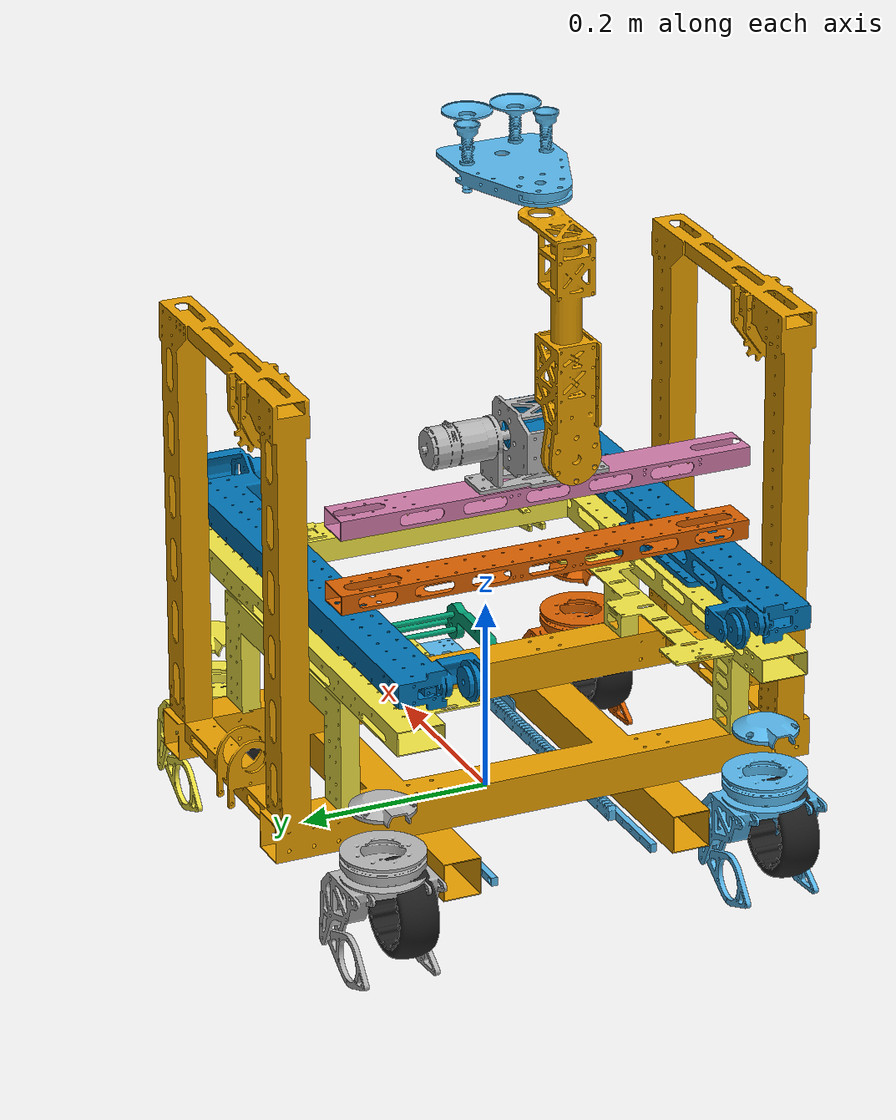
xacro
<?xml version="1.0"?>
<robot xmlns:xacro="http://www.ros.org/wiki/xacro" name="engineer">
    <xacro:arg name="load_chassis" default="true"/>
    <xacro:arg name="load_arm" default="true"/>
    <xacro:arg name="use_simulation" default="true"/>

    <xacro:if value="$(arg load_chassis)">
        <xacro:include filename="$(find rm_description)/urdf/engineer/chassis.urdf.xacro"/>
        <xacro:chassis/>
    </xacro:if>

    <xacro:if value="$(arg load_arm)">
        <xacro:include filename="$(find rm_description)/urdf/engineer/arm.urdf.xacro"/>
        <xacro:arm connected_to="base_link" simulation="$(arg use_simulation)"/>
        <xacro:include filename="$(find rm_description)/urdf/engineer/arm.transmission.xacro"/>
        <xacro:arm_transmission simulation="$(arg use_simulation)"/>
    </xacro:if>

    <xacro:if value="$(arg use_simulation)">
        <gazebo>
            <plugin name="rm_ros_control" filename="librm_robot_hw_sim.so">
                <robotNamespace>/</robotNamespace>
                <robotSimType>rm_gazebo/RmRobotHWSim</robotSimType>
            </plugin>
        </gazebo>
    </xacro:if>

</robot>

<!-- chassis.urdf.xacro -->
<robot xmlns:xacro="http://www.ros.org/wiki/xacro" name="chassis">

    <xacro:include filename="$(find rm_description)/urdf/common/swerve_drive.urdf.xacro"/>
    <!-- https://upload.wikimedia.org/wikipedia/commons/5/52/Wheelbase_and_Track.png -->
    <xacro:property name="wheel_track" value="0.423"/>
    <xacro:property name="wheel_base" value="0.412"/>
    <xacro:property name="wheel_offset_z" value="0.06795"/>

    <xacro:macro name="chassis">

        <link name="base_link">
            <inertial>
                <mass value="14.321805"/>
                <origin xyz="-0.011828 -0.007426 0.160123"/>
                <inertia ixx="1.06e0" ixy="1.071e-3" ixz="3.011e-2" iyy="9.494e-1" iyz="2.344e-2" izz="7.430e-1"/>
            </inertial>
            <visual>
                <origin xyz="0 0 0" rpy="0 0 0"/>
                <geometry>
                    <mesh filename="package://rm_description/meshes/engineer/base_link.stl" scale="0.001 0.001 0.001"/>
                </geometry>
            </visual>
            <collision>
                <origin xyz="0 0 0" rpy="0 0 0"/>
                <geometry>
                    <mesh filename="package://rm_description/meshes/engineer/base_collision.stl"
                          scale="0.001 0.001 0.001"/>
                </geometry>
            </collision>
            <collision>
                <origin xyz="0.175 -0.247 0.275" rpy="0 0 0"/>
                <geometry>
                    <box size="0.061 0.042 0.4"/>
                </geometry>
            </collision>
            <collision>
                <origin xyz="0.175 0.247 0.275" rpy="0 0 0"/>
                <geometry>
                    <box size="0.091 0.05 0.45"/>
                </geometry>
            </collision>
            <collision>
                <origin xyz="-0.175 -0.247 0.275" rpy="0 0 0"/>
                <geometry>
                    <box size="0.091 0.05 0.45"/>
                </geometry>
            </collision>
            <collision>
                <origin xyz="0.175 -0.247 0.275" rpy="0 0 0"/>
                <geometry>
                    <box size="0.091 0.05 0.45"/>
                </geometry>
            </collision>
            <collision>
                <origin xyz="-0.175 0.247 0.275" rpy="0 0 0"/>
                <geometry>
                    <box size="0.091 0.05 0.45"/>
                </geometry>
            </collision>
            <collision>
                <origin xyz="0. -0.255 0.51" rpy="0 0 0"/>
                <geometry>
                    <box size="0.41 0.06 0.09"/>
                </geometry>
            </collision>
            <collision>
                <origin xyz="0. 0.255 0.51" rpy="0 0 0"/>
                <geometry>
                    <box size="0.41 0.06 0.09"/>
                </geometry>
            </collision>
        </link>

        <link name="card">
            <inertial>
                <mass value="0.807434"/>
                <origin xyz="0.038318 -0.188972 -0.009577"/>
                <inertia ixx="3.069e-2" ixy="5.419e-3" ixz="2.460e-4" iyy="4.318e-3" iyz="3.398e-2"
                         izz="4.126e-3"/>
            </inertial>
            <visual>
                <origin xyz="0 0 0" rpy="0 0 -1.57"/>
                <geometry>
                    <mesh filename="package://rm_description/meshes/engineer/card.stl" scale="0.001 0.001 0.001"/>
                </geometry>
            </visual>
        </link>

        <link name="drag">
            <inertial>
                <mass value="0.404605"/>
                <origin xyz="0.053283 0.032371 0.017125"/>
                <inertia ixx="5.893e-3" ixy="1.346e-4" ixz="-8.957569e-5" iyy="2.879e-3" iyz="-4.020e-4"
                         izz="8.206e-3"/>
            </inertial>
            <visual>
                <origin xyz="0 0 0" rpy="0 0 0"/>
                <geometry>
                    <mesh filename="package://rm_description/meshes/engineer/drag.stl"
                          scale="0.001 0.001 0.001"/>
                </geometry>
            </visual>
        </link>

        <joint name="card_joint" type="prismatic">
            <parent link="base_link"/>
            <child link="card"/>
            <origin xyz="0.244 0. 0.036" rpy="0 0 -1.57"/>
            <axis xyz="0 1 0"/>
            <limit lower="-0.01" upper="0.6" velocity="3" effort="200"/>
        </joint>

        <joint name="drag_joint" type="revolute">
            <parent link="base_link"/>
            <child link="drag"/>
            <origin xyz="0.245 0 0.06" rpy="0 0 0"/>
            <axis xyz="0 1 0"/>
            <limit lower="-10" upper="20" velocity="6" effort="200"/>
        </joint>

        <transmission name="trans_card_joint">
            <type>transmission_interface/SimpleTransmission</type>
            <actuator name="card_joint_motor">
                <mechanicalReduction>1800</mechanicalReduction>
            </actuator>
            <joint name="card_joint">
                <offset>0</offset>
                <hardwareInterface>hardware_interface/EffortJointInterface</hardwareInterface>
            </joint>
        </transmission>

        <transmission name="trans_drag_joint">
            <type>transmission_interface/SimpleTransmission</type>
            <actuator name="drag_joint_motor">
                <mechanicalReduction>2</mechanicalReduction>
            </actuator>
            <joint name="drag_joint">
                <offset>0</offset>
                <hardwareInterface>hardware_interface/EffortJointInterface</hardwareInterface>
            </joint>
        </transmission>

        <xacro:swerve_drive prefix="left_front" connected_to="base_link"
                            x_offset="${wheel_track/2}" y_offset="${wheel_base/2}"
                            z_offset="${wheel_offset_z}"/>
        <xacro:swerve_drive prefix="right_front" connected_to="base_link"
                            x_offset="${wheel_track/2}" y_offset="${-wheel_base/2}"
                            z_offset="${wheel_offset_z}"/>
        <xacro:swerve_drive prefix="left_back" connected_to="base_link"
                            x_offset="${-wheel_track/2}" y_offset="${wheel_base/2}"
                            z_offset="${wheel_offset_z}"/>
        <xacro:swerve_drive prefix="right_back" connected_to="base_link"
                            x_offset="${-wheel_track/2}" y_offset="${-wheel_base/2}"
                            z_offset="${wheel_offset_z}"/>

        <xacro:swerve_transmission prefix="left_front" wheel_reduction="13" pivot_offset="4.481304"/>
        <xacro:swerve_transmission prefix="right_front" wheel_reduction="13" pivot_offset="0.733332"/>
        <xacro:swerve_transmission prefix="left_back" wheel_reduction="13" pivot_offset="4.25117"/>
        <xacro:swerve_transmission prefix="right_back" wheel_reduction="13" pivot_offset="0.80697"/>

    </xacro:macro>

</robot>

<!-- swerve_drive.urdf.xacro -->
<robot xmlns:xacro="http://www.ros.org/wiki/xacro">

    <xacro:macro name="swerve_drive"
                 params="prefix x_offset y_offset z_offset  connected_to">

        <link name="${prefix}_pivot">
            <visual>
                <origin xyz="0 0 0" rpy="0 0 0"/>
                <geometry>
                    <mesh filename="package://rm_description/meshes/common/swerve_pivot.stl"
                          scale="0.001 0.001 0.001"/>
                </geometry>
            </visual>
            <inertial>
                <mass value="0.114131"/>
                <origin xyz="-0.00005 0.017079 -0.041536" rpy="0 0 0"/>
                <inertia ixx="1.335e-4" ixy="26.001e-9" ixz="65.031e-9" iyy="1.372e-4" iyz="20051.742e-9"
                         izz="66866.081e-9"/>
            </inertial>
        </link>

        <joint name="${prefix}_pivot_joint" type="revolute">
            <axis xyz="0 0 1"/>
            <origin xyz="${x_offset} ${y_offset} ${z_offset}" rpy="0 0 0"/>
            <parent link="${connected_to}"/>
            <child link="${prefix}_pivot"/>
            <dynamics damping="0.0" friction="0.1"/>
            <limit effort="1.2" velocity="50" lower="-1e10" upper="1e10"/>
        </joint>

        <link name="${prefix}_wheel">
            <visual>
                <origin xyz="0 0 0" rpy="0 0 0"/>
                <geometry>
                    <mesh filename="package://rm_description/meshes/common/swerve_wheel.stl"
                          scale="0.001 0.001 0.001"/>
                </geometry>
            </visual>
            <inertial>
                <mass value="0.267401"/>
                <origin xyz="-0.000004 0.000125 0.000001" rpy="0 0 0"/>
                <inertia ixx="3.585e-4" ixy="0" ixz="13.459e-9" iyy="6.846e-4" iyz="0"
                         izz="3.584e-4"/>
            </inertial>
            <collision>
                <origin xyz="0 0 0" rpy="${pi/2.} 0 0"/>
                <geometry>
                    <cylinder length="0.02" radius="0.055"/>
                </geometry>
            </collision>
        </link>

        <joint name="${prefix}_wheel_joint" type="revolute">
            <axis xyz="0 1 0"/>
            <origin xyz="0 0 -0.06635" rpy="0 0 0"/>
            <parent link="${prefix}_pivot"/>
            <child link="${prefix}_wheel"/>
            <limit effort="3" velocity="76" lower="-1e10" upper="1e10"/>
            <dynamics damping="0.0" friction="0.05"/>
        </joint>

        <gazebo reference="${prefix}_wheel">
            <mu1 value="1.0"/>
            <mu2 value="1.0"/>
            <kp value="1000000.0"/>
            <kd value="100.0"/>
            <material>Gazebo/Black</material>
        </gazebo>
    </xacro:macro>

    <xacro:macro name="swerve_transmission" params="prefix wheel_reduction  pivot_offset">

        <transmission name="${prefix}_pivot_trans">
            <type>transmission_interface/SimpleTransmission</type>
            <actuator name="${prefix}_pivot_motor">
                <mechanicalReduction>-1</mechanicalReduction>
            </actuator>
            <joint name="${prefix}_pivot_joint">
                <offset>${pivot_offset}</offset>
                <hardwareInterface>hardware_interface/EffortJointInterface</hardwareInterface>
            </joint>
        </transmission>

        <transmission name="${prefix}_wheel_trans">
            <type>transmission_interface/SimpleTransmission</type>
            <actuator name="${prefix}_wheel_motor">
                <mechanicalReduction>${wheel_reduction}</mechanicalReduction>
            </actuator>
            <joint name="${prefix}_wheel_joint">
                <hardwareInterface>hardware_interface/EffortJointInterface</hardwareInterface>
            </joint>
        </transmission>
    </xacro:macro>

</robot>

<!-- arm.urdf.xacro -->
<robot xmlns:xacro="http://www.ros.org/wiki/xacro" name="arm">

    <xacro:macro name="arm" params="connected_to simulation">
        <xacro:property name="joint1_upper_limit" value="0.24"/>
        <xacro:property name="joint1_lower_limit" value="0"/>
        <xacro:property name="joint2_upper_limit" value="0.33"/>
        <xacro:property name="joint2_lower_limit" value="-0.35"/>
        <xacro:property name="joint3_upper_limit" value="0.31"/>
        <xacro:property name="joint3_lower_limit" value="-0.12"/>
        <xacro:property name="joint4_upper_limit" value="0.31"/>
        <xacro:property name="joint4_lower_limit" value="-0.31"/>
        <xacro:property name="joint5_upper_limit" value="3.8445"/>
        <xacro:property name="joint5_lower_limit" value="0"/>
        <xacro:property name="joint6_upper_limit" value="0.9"/>
        <xacro:property name="joint6_lower_limit" value="-0.9"/>
        <xacro:property name="joint7_upper_limit" value="4.5"/>
        <xacro:property name="joint7_lower_limit" value="-1.3"/>
        <xacro:property name="joint1_velocity" value="1.2"/>
        <xacro:property name="joint1_effort" value="609.75"/>
        <xacro:property name="joint2_velocity" value="1.9"/>
        <xacro:property name="joint2_effort" value="110.00"/>
        <xacro:property name="joint3_velocity" value="0.964"/>
        <xacro:property name="joint3_effort" value="258.00"/>
        <!--  link  -->
        <link name="link1">
            <inertial>
                <mass value="3.266699"/>
                <origin xyz="0.044552 -0.00278 -0.024231"/>
                <inertia ixx="9.871e-2" ixy="4.488e-4" ixz="4.363e-3" iyy="1.028e-1" iyz="-1.680e-4" izz="1.941e-1"/>
            </inertial>
            <visual>
                <origin xyz="0 0 0" rpy="0 0 0"/>
                <geometry>
                    <mesh filename="package://rm_description/meshes/engineer/link1.stl" scale="0.001 0.001 0.001"/>
                </geometry>
            </visual>
            <collision>
                <origin xyz="0 0 0" rpy="0 0 0"/>
                <geometry>
                    <mesh filename="package://rm_description/meshes/engineer/link1_collision.stl"
                          scale="0.001 0.001 0.001"/>
                </geometry>
            </collision>
            <selfCollide>true</selfCollide>
        </link>

        <link name="link2_1">
            <inertial>
                <mass value="3.952737"/>
                <origin xyz="-0.053803 0.000205 -0.026272"/>
                <inertia ixx="1.397e-1" ixy="3.8918305e-5" ixz="5.212e-3" iyy="1.367e-1" iyz="4.7399093e-5"
                         izz="2.691e-1"/>
            </inertial>
            <visual>
                <origin xyz="0 0 0" rpy="0 0 0"/>
                <geometry>
                    <mesh filename="package://rm_description/meshes/engineer/link2_1.stl" scale="0.001 0.001 0.001"/>
                </geometry>
            </visual>
            <collision>
                <origin xyz="0 0 0" rpy="0 0 0"/>
                <geometry>
                    <mesh filename="package://rm_description/meshes/engineer/link2_1_collision.stl"
                          scale="0.001 0.001 0.001"/>
                </geometry>
            </collision>
            <collision>
                <origin xyz="0.29 0.175 -0.025" rpy="0 0 0"/>
                <geometry>
                    <box size="0.08 0.12 0.1"/>
                </geometry>
            </collision>
            <collision>
                <origin xyz="0.29 -0.175 -0.025" rpy="0 0 0"/>
                <geometry>
                    <box size="0.08 0.12 0.1"/>
                </geometry>
            </collision>
            <selfCollide>true</selfCollide>
        </link>

        <link name="link2_2">
            <inertial>
                <mass value="1.355869"/>
                <origin xyz="-0.016479 0.004436 0.022901"/>
                <inertia ixx="9.431e-3" ixy="4.159e-4" ixz="6.466e-4" iyy="4.159e-4" iyz="-6.0491299e-5"
                         izz="9.448e-3"/>
            </inertial>
            <visual>
                <geometry>
                    <mesh filename="package://rm_description/meshes/engineer/link2_2.stl" scale="0.001 0.001 0.001"/>
                </geometry>
                <origin xyz="0 0 0" rpy="0 0 0"/>
            </visual>
            <collision>
                <origin xyz="0 0 0" rpy="0 0 0"/>
                <geometry>
                    <mesh filename="package://rm_description/meshes/engineer/link2_2_collision.stl"
                          scale="0.001 0.001 0.001"/>
                </geometry>
            </collision>
            <collision>
                <origin xyz="-0.056 0.24 0.03" rpy="0 0 0"/>
                <geometry>
                    <box size="0.063 0.05 0.043"/>
                </geometry>
            </collision>
        </link>

        <link name="link3">
            <inertial>
                <mass value="1.790039"/>
                <origin xyz="-0.004447 -0.100499 0.025621"/>
                <inertia ixx="3.962e-2" ixy="9.235e-4" ixz="2.985e-4" iyy="5.451e-3" iyz="-8.484e-3"
                         izz="3.837e-2"/>
            </inertial>
            <visual>
                <origin xyz="0 0 0" rpy="0 0 0"/>
                <geometry>
                    <mesh filename="package://rm_description/meshes/engineer/link3.stl" scale="0.001 0.001 0.001"/>
                </geometry>
            </visual>
            <collision>
                <origin xyz="0 0 0" rpy="0 0 0"/>
                <geometry>
                    <mesh filename="package://rm_description/meshes/engineer/link3_collision.stl"
                          scale="0.001 0.001 0.001"/>
                </geometry>
            </collision>
            <collision>
                <origin xyz="-0.06 0. -0.03" rpy="0 0 0"/>
                <geometry>
                    <box size="0.063 0.4 0.083"/>
                </geometry>
            </collision>
            <selfCollide>true</selfCollide>
        </link>

        <link name="link4">
            <inertial>
                <mass value="0.597915"/>
                <origin xyz="0.0033 -0.051861 0.000004"/>
                <inertia ixx="3.027e-3" ixy="-6.403167e-6" ixz="2.37196e-7" iyy="2.774e-4" iyz="-7.08963e-7"
                         izz="3.084e-3"/>
            </inertial>
            <visual>
                <origin xyz="0 0 0" rpy="0 0 0"/>
                <geometry>
                    <mesh filename="package://rm_description/meshes/engineer/link4.stl" scale="0.001 0.001 0.001"/>
                </geometry>
            </visual>
            <collision>
                <origin xyz="-0.0145 0 0" rpy="0 0 0"/>
                <geometry>
                    <box size="0.0825 0.1015 0.078"/>
                </geometry>
            </collision>
            <collision>
                <origin xyz="0. 0.0878 0" rpy="0 0 0"/>
                <geometry>
                    <box size="0.0495 0.071 0.0495"/>
                </geometry>
            </collision>
            <selfCollide>true</selfCollide>
        </link>

        <link name="link5">
            <inertial>
                <mass value="0.690989"/>
                <origin xyz="-0.019826 0.000116 0.034079"/>
                <inertia ixx="3.66e-3" ixy="3.03464e-7" ixz="1.075e-4" iyy="4.425e-3" iyz="-1.1195657e-5"
                         izz="9.656e-4"/>
            </inertial>
            <visual>
                <origin xyz="0 0 0" rpy="0 0 0"/>
                <geometry>
                    <mesh filename="package://rm_description/meshes/engineer/link5.stl" scale="0.001 0.001 0.001"/>
                </geometry>
            </visual>
            <collision>
                <origin xyz="0 0 0" rpy="0 0 0"/>
                <geometry>
                    <mesh filename="package://rm_description/meshes/engineer/link5_collision.stl"
                          scale="0.001 0.001 0.001"/>
                </geometry>
            </collision>
            <selfCollide>true</selfCollide>
        </link>

        <link name="link6">
            <inertial>
                <mass value="0.771338"/>
                <origin xyz="0.04148 -0.000028 -0.028949"/>
                <inertia ixx="2.206e-3" ixy="-3.0455e-8" ixz="-1.041e-4" iyy="4.988e-3" iyz="-4.58505e-7"
                         izz="3.998e-3"/>
            </inertial>
            <visual>
                <origin xyz="0 0 0" rpy="0 0 0"/>
                <geometry>
                    <mesh filename="package://rm_description/meshes/engineer/link6.stl" scale="0.001 0.001 0.001"/>
                </geometry>
            </visual>
            <collision>
                <origin xyz="0 0 0" rpy="0 0 0"/>
                <geometry>
                    <mesh filename="package://rm_description/meshes/engineer/link6_collision.stl"
                          scale="0.001 0.001 0.001"/>
                </geometry>
            </collision>
            <selfCollide>true</selfCollide>
        </link>

        <link name="tools_link"/>

        <joint name="joint1" type="prismatic">
            <parent link="${connected_to}"/>
            <child link="link1"/>
            <origin xyz="0 0 0.233" rpy="0 0 0"/>
            <axis xyz="0 0 1"/>
            <limit lower="${joint1_lower_limit}" upper="${joint1_upper_limit}" velocity="${joint1_velocity}"
                   effort="${joint1_effort}"/>
            <safety_controller k_position="6000." k_velocity="200."
                               soft_lower_limit="${joint1_lower_limit+0.0001}"
                               soft_upper_limit="${joint1_upper_limit-0.0001}"/>
            <dynamics damping="0.0" friction="0.1"/>
        </joint>

        <joint name="joint2" type="prismatic">
            <parent link="link1"/>
            <child link="link2_1"/>
            <origin xyz="-0.014 0. 0.0542" rpy="0 0 0"/>
            <axis xyz="1 0 0"/>
            <limit lower="${joint2_lower_limit}" upper="${joint2_upper_limit}" velocity="${joint2_velocity}"
                   effort="${joint2_effort}"/>
            <safety_controller k_position="50000." k_velocity="600."
                               soft_lower_limit="${joint2_lower_limit+0.003}"
                               soft_upper_limit="${joint2_upper_limit-0.003}"/>
            <dynamics damping="0.0" friction="0.1"/>
        </joint>

        <joint name="joint3" type="prismatic">
            <parent link="link2_1"/>
            <child link="link2_2"/>
            <origin xyz="-0.11 0. 0.013" rpy="0 0 0"/>
            <axis xyz="1 0 0"/>
            <limit lower="${joint3_lower_limit}" upper="${joint3_upper_limit}" velocity="${joint3_velocity}"
                   effort="${joint3_effort}"/>
            <safety_controller k_position="80000." k_velocity="1000."
                               soft_lower_limit="${joint3_lower_limit+0.001}"
                               soft_upper_limit="${joint3_upper_limit-0.001}"/>
            <dynamics damping="0.0" friction="0.1"/>
        </joint>

        <joint name="joint4" type="prismatic">
            <parent link="link2_2"/>
            <child link="link3"/>
            <origin xyz="0. 0. 0.078" rpy="0 0 0"/>
            <axis xyz="0 1 0"/>
            <limit lower="${joint4_lower_limit}" upper="${joint4_upper_limit}" velocity="2.92" effort="85.47"/>
            <safety_controller k_position="8000." k_velocity="400."
                               soft_lower_limit="${joint4_lower_limit+0.005}"
                               soft_upper_limit="${joint4_upper_limit-0.005}"/>
            <dynamics damping="0.0" friction="0.1"/>
        </joint>

        <joint name="joint5" type="revolute">
            <parent link="link3"/>
            <child link="link4"/>
            <origin xyz="0. 0. 0.06" rpy="0 0 0"/>
            <axis xyz="0 1 0"/>
            <limit lower="${joint5_lower_limit}" upper="${joint5_upper_limit}" velocity="18.8" effort="13.3"/>
            <safety_controller k_position="300." k_velocity="3."
                               soft_lower_limit="${joint5_lower_limit+0.05}"
                               soft_upper_limit="${joint5_upper_limit-0.05}"/>
            <dynamics damping="0.0" friction="0.1"/>
        </joint>

        <joint name="joint6" type="revolute">
            <parent link="link4"/>
            <child link="link5"/>
            <origin xyz="-0.06 0. 0." rpy="0 0 0"/>
            <axis xyz="1 0 0"/>
            <limit lower="${joint6_lower_limit}" upper="${joint6_upper_limit}" velocity="18.8" effort="13.3"/>
            <safety_controller k_position="100." k_velocity="3."
                               soft_lower_limit="${joint6_lower_limit+0.01}"
                               soft_upper_limit="${joint6_upper_limit-0.01}"/>
            <dynamics damping="0.0" friction="0.1"/>
        </joint>

        <joint name="joint7" type="revolute">
            <parent link="link5"/>
            <child link="link6"/>
            <origin xyz="0.06 0 0.253" rpy="0 0 0"/>
            <axis xyz="0 0 1"/>
            <limit lower="${joint7_lower_limit}" upper="${joint7_upper_limit}" velocity="50" effort="5"/>
            <safety_controller k_position="50." k_velocity="0.6"
                               soft_lower_limit="${joint7_lower_limit+0.2}"
                               soft_upper_limit="${joint7_upper_limit-0.2}"/>
            <dynamics damping="0.0" friction="0.1"/>
        </joint>

        <joint name="tools_joint" type="fixed">
            <parent link="link6"/>
            <child link="tools_link"/>
            <origin xyz="0.112 0 0.154" rpy="0 0 0"/>
        </joint>

        <xacro:unless value="${simulation}">
            <link name="mimic_link1">
                <inertial>
                    <mass value="0.1"/>
                    <origin xyz="0. 0. 0."/>
                    <inertia ixx="0" ixy="0" ixz="0" iyy="0" iyz="0" izz="0"/>
                </inertial>
                <visual>
                    <origin xyz="0. 0.237 -0.0175" rpy="0 0 0"/>
                    <geometry>
                        <box size="0.01 0.01 0.1"/>
                    </geometry>
                </visual>
                <collision>
                    <origin xyz="0. 0 0." rpy="0 0 0"/>
                    <geometry>
                        <box size="0. 0. 0."/>
                    </geometry>
                </collision>
            </link>

            <link name="mimic_link2_1">
                <inertial>
                    <mass value="0.1"/>
                    <origin xyz="0. 0. 0."/>
                    <inertia ixx="0" ixy="0" ixz="0" iyy="0" iyz="0" izz="0"/>
                </inertial>
                <visual>
                    <origin xyz="-0.283 0.134 0.003" rpy="0 0 0"/>
                    <geometry>
                        <box size="0.1 0.01 0.01"/>
                    </geometry>
                </visual>
                <collision>
                    <origin xyz="0. 0 0." rpy="0 0 0"/>
                    <geometry>
                        <box size="0. 0. 0."/>
                    </geometry>
                </collision>
            </link>

            <link name="mimic_link2_2">
                <inertial>
                    <mass value="0.1"/>
                    <origin xyz="0. 0. 0."/>
                    <inertia ixx="0" ixy="0" ixz="0" iyy="0" iyz="0" izz="0"/>
                </inertial>
                <visual>
                    <origin xyz="-0.001 0 0.0015" rpy="0 0 0"/>
                    <geometry>
                        <box size="0.1 0.01 0.01"/>
                    </geometry>
                </visual>
                <collision>
                    <origin xyz="0. 0 0." rpy="0 0 0"/>
                    <geometry>
                        <box size="0. 0. 0."/>
                    </geometry>
                </collision>
            </link>

            <joint name="mimic_joint1" type="prismatic">
                <parent link="${connected_to}"/>
                <child link="mimic_link1"/>
                <origin xyz="0 0 10.21375" rpy="0 0 0"/>
                <axis xyz="0 0 1"/>
                <limit lower="${joint1_lower_limit}" upper="${joint1_upper_limit}" velocity="${joint1_velocity}"
                       effort="${joint1_effort}"/>
                <safety_controller k_position="6000." k_velocity="200."
                                   soft_lower_limit="${joint1_lower_limit+0.0001}"
                                   soft_upper_limit="${joint1_upper_limit-0.0001}"/>
            </joint>

            <joint name="mimic_joint2" type="prismatic">
                <parent link="link1"/>
                <child link="mimic_link2_1"/>
                <origin xyz="0. 0. 30.098707" rpy="0 0 0"/>
                <axis xyz="1 0 0"/>
                <limit lower="${joint2_lower_limit}" upper="${joint2_upper_limit}" velocity="${joint2_velocity}"
                       effort="${joint2_effort}"/>
                <safety_controller k_position="50000." k_velocity="600."
                                   soft_lower_limit="${joint2_lower_limit+0.003}"
                                   soft_upper_limit="${joint2_upper_limit-0.003}"/>
            </joint>

            <joint name="mimic_joint3" type="prismatic">
                <parent link="link2_1"/>
                <child link="mimic_link2_2"/>
                <origin xyz="0.022 0. 20.034" rpy="0 0 0"/>
                <axis xyz="1 0 0"/>
                <limit lower="${joint3_lower_limit}" upper="${joint3_upper_limit}" velocity="${joint3_velocity}"
                       effort="${joint3_effort}"/>
                <safety_controller k_position="80000." k_velocity="1000."
                                   soft_lower_limit="${joint3_lower_limit+0.001}"
                                   soft_upper_limit="${joint3_upper_limit-0.001}"/>
            </joint>
        </xacro:unless>
    </xacro:macro>
</robot>
